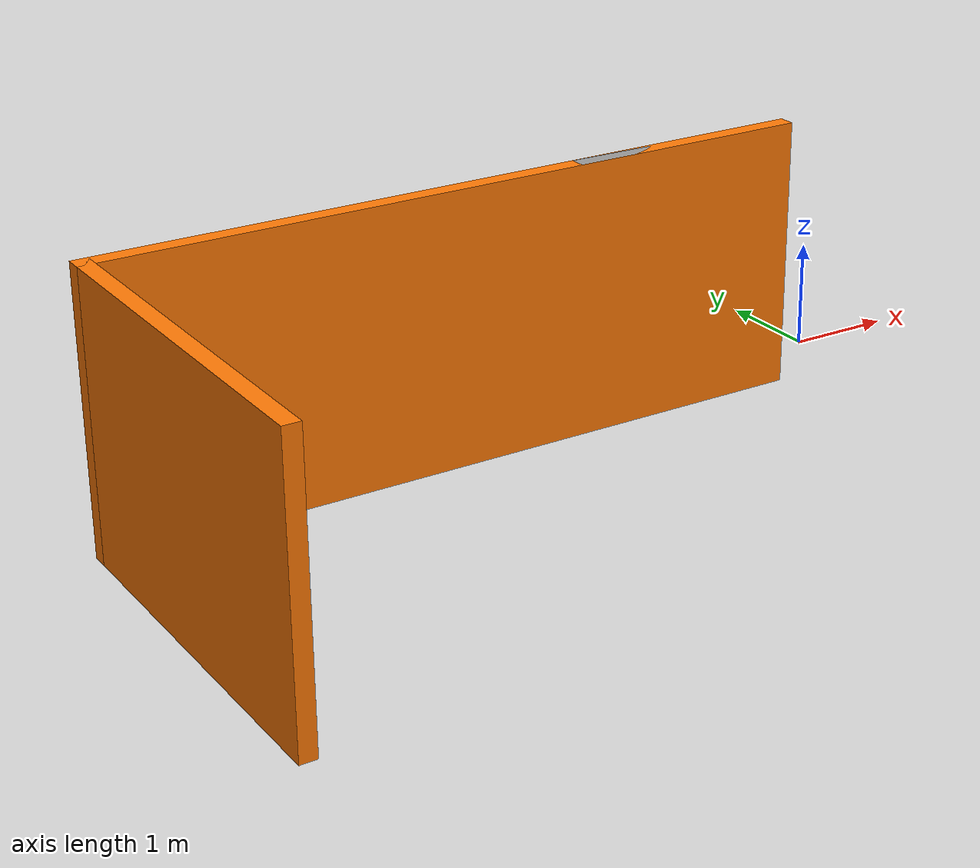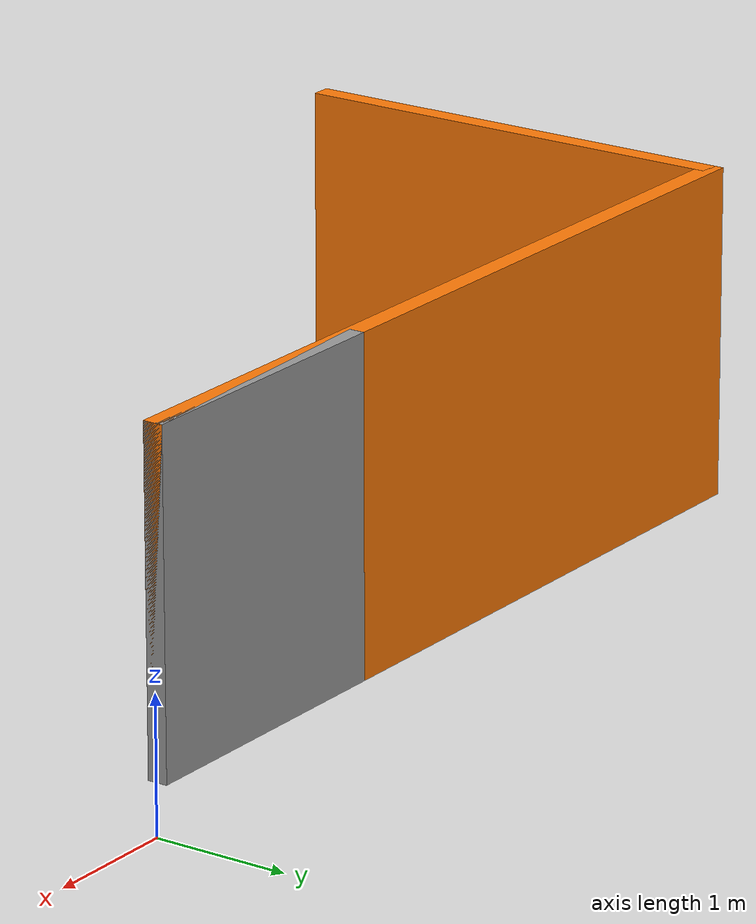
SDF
<?xml version='1.0'?>
<sdf version='1.6'>
  <model name='wall2'>
    <pose frame=''>-4.11 -2.225 0 0 -0 0</pose>
    <link name='Wall_0'>
      <collision name='Wall_0_Collision'>
        <geometry>
          <box>
            <size>2.25 0.15 2.5</size>
          </box>
        </geometry>
        <pose frame=''>0 0 1.25 0 -0 0</pose>
      </collision>
      <visual name='Wall_0_Visual'>
        <pose frame=''>0 0 1.25 0 -0 0</pose>
        <geometry>
          <box>
            <size>2.25 0.15 2.5</size>
          </box>
        </geometry>
        <material>
          <script>
            <uri>file://media/materials/scripts/gazebo.material</uri>
            <name>Gazebo/Grey</name>
          </script>
          <ambient>1 1 1 1</ambient>
        </material>
        <meta>
          <layer>0</layer>
        </meta>
      </visual>
      <pose frame=''>2.25 1.675 0 0 -0 0</pose>
    </link>
    <link name='Wall_1'>
      <collision name='Wall_1_Collision'>
        <geometry>
          <box>
            <size>6.75 0.15 2.5</size>
          </box>
        </geometry>
        <pose frame=''>0 0 1.25 0 -0 0</pose>
      </collision>
      <visual name='Wall_1_Visual'>
        <pose frame=''>0 0 1.25 0 -0 0</pose>
        <geometry>
          <box>
            <size>6.75 0.15 2.5</size>
          </box>
        </geometry>
        <material>
          <script>
            <uri>file://media/materials/scripts/gazebo.material</uri>
            <name>Gazebo/Grey</name>
          </script>
          <ambient>0.996078 0.47451 0.0196078 1</ambient>
        </material>
        <meta>
          <layer>0</layer>
        </meta>
      </visual>
      <pose frame=''>-0 1.675 0 0 -0 3.14159</pose>
    </link>
    <link name='Wall_2'>
      <collision name='Wall_2_Collision'>
        <geometry>
          <box>
            <size>3.5 0.15 2.5</size>
          </box>
        </geometry>
        <pose frame=''>0 0 1.25 0 -0 0</pose>
      </collision>
      <visual name='Wall_2_Visual'>
        <pose frame=''>0 0 1.25 0 -0 0</pose>
        <geometry>
          <box>
            <size>3.5 0.15 2.5</size>
          </box>
        </geometry>
        <material>
          <script>
            <uri>file://media/materials/scripts/gazebo.material</uri>
            <name>Gazebo/Grey</name>
          </script>
          <ambient>0.996078 0.47451 0.0196078 1</ambient>
        </material>
        <meta>
          <layer>0</layer>
        </meta>
      </visual>
      <pose frame=''>-3.3 0 0 0 -0 -1.5708</pose>
    </link>
    <static>1</static>
  </model>
</sdf>
